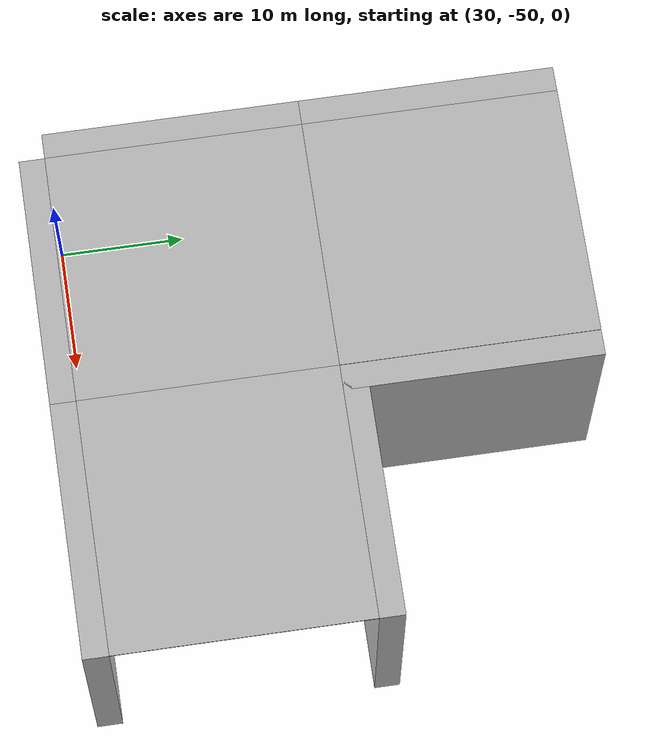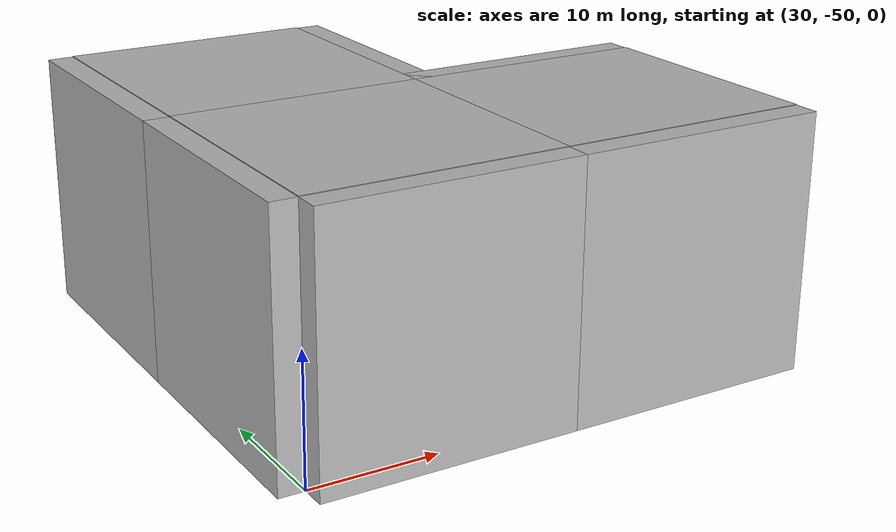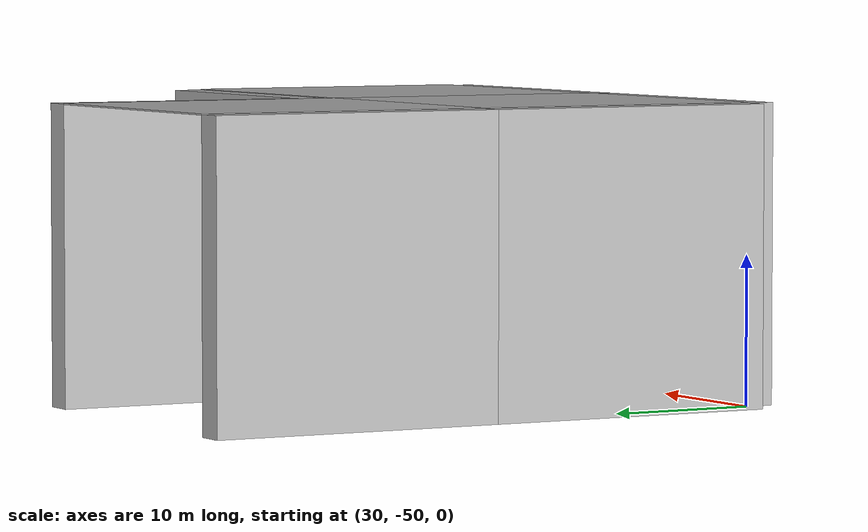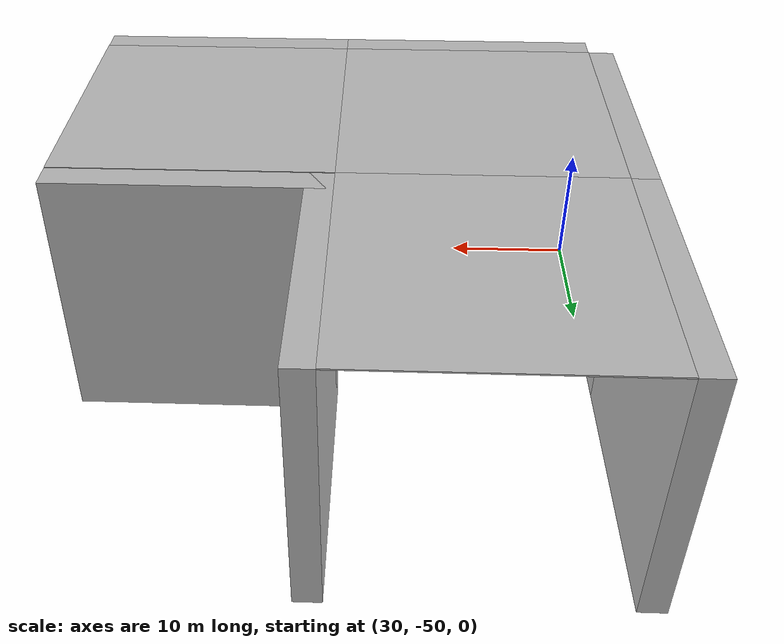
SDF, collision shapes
<?xml version='1.0'?>
<sdf version='1.7'>
  <model name='race_1_02'>
    <link name='link_clone_3_clone_0'>
      <self_collide>0</self_collide>
      <enable_wind>0</enable_wind>
      <kinematic>0</kinematic>
      <pose>51 -20 10 1.5708 -0 1.5708</pose>
      <visual name='visual'>
        <cast_shadows>1</cast_shadows>
        <transparency>0.6</transparency>
        <geometry>
          <box>
            <size>20 20 2</size>
          </box>
        </geometry>
        <material>
          <script>
            <uri>model://new_wall/materials/scripts</uri>
            <uri>model://new_wall/materials/textures/</uri>
            <name>NewWall/Image</name>
          </script>
          <shader type='pixel'/>
        </material>
        <pose>0 0 0 0 -0 0</pose>
      </visual>
      <collision name='collision'>
        <laser_retro>0</laser_retro>
        <max_contacts>10</max_contacts>
        <pose>0 0 0 0 -0 0</pose>
        <geometry>
          <box>
            <size>20 20 2</size>
          </box>
        </geometry>
        <surface>
          <friction>
            <ode>
              <mu>1</mu>
              <mu2>1</mu2>
              <fdir1>0 0 0</fdir1>
              <slip1>0</slip1>
              <slip2>0</slip2>
            </ode>
            <torsional>
              <coefficient>1</coefficient>
              <patch_radius>0</patch_radius>
              <surface_radius>0</surface_radius>
              <use_patch_radius>1</use_patch_radius>
              <ode>
                <slip>0</slip>
              </ode>
            </torsional>
          </friction>
          <bounce>
            <restitution_coefficient>0</restitution_coefficient>
            <threshold>1e+06</threshold>
          </bounce>
          <contact>
            <collide_without_contact>0</collide_without_contact>
            <collide_without_contact_bitmask>1</collide_without_contact_bitmask>
            <collide_bitmask>1</collide_bitmask>
            <ode>
              <soft_cfm>0</soft_cfm>
              <soft_erp>0.2</soft_erp>
              <kp>1e+13</kp>
              <kd>1</kd>
              <max_vel>0.01</max_vel>
              <min_depth>0</min_depth>
            </ode>
            <bullet>
              <split_impulse>1</split_impulse>
              <split_impulse_penetration_threshold>-0.01</split_impulse_penetration_threshold>
              <soft_cfm>0</soft_cfm>
              <soft_erp>0.2</soft_erp>
              <kp>1e+13</kp>
              <kd>1</kd>
            </bullet>
          </contact>
        </surface>
      </collision>
    </link>
    <link name='link_clone_3_clone_1'>
      <self_collide>0</self_collide>
      <enable_wind>0</enable_wind>
      <kinematic>0</kinematic>
      <pose>29 -20 10 1.5708 -0 1.5708</pose>
      <visual name='visual'>
        <cast_shadows>1</cast_shadows>
        <transparency>0.6</transparency>
        <geometry>
          <box>
            <size>20 20 2</size>
          </box>
        </geometry>
        <material>
          <script>
            <uri>model://new_wall/materials/scripts</uri>
            <uri>model://new_wall/materials/textures/</uri>
            <name>NewWall/Image</name>
          </script>
          <shader type='pixel'/>
        </material>
        <pose>0 0 0 0 -0 0</pose>
      </visual>
      <collision name='collision'>
        <laser_retro>0</laser_retro>
        <max_contacts>10</max_contacts>
        <pose>0 0 0 0 -0 0</pose>
        <geometry>
          <box>
            <size>20 20 2</size>
          </box>
        </geometry>
        <surface>
          <friction>
            <ode>
              <mu>1</mu>
              <mu2>1</mu2>
              <fdir1>0 0 0</fdir1>
              <slip1>0</slip1>
              <slip2>0</slip2>
            </ode>
            <torsional>
              <coefficient>1</coefficient>
              <patch_radius>0</patch_radius>
              <surface_radius>0</surface_radius>
              <use_patch_radius>1</use_patch_radius>
              <ode>
                <slip>0</slip>
              </ode>
            </torsional>
          </friction>
          <bounce>
            <restitution_coefficient>0</restitution_coefficient>
            <threshold>1e+06</threshold>
          </bounce>
          <contact>
            <collide_without_contact>0</collide_without_contact>
            <collide_without_contact_bitmask>1</collide_without_contact_bitmask>
            <collide_bitmask>1</collide_bitmask>
            <ode>
              <soft_cfm>0</soft_cfm>
              <soft_erp>0.2</soft_erp>
              <kp>1e+13</kp>
              <kd>1</kd>
              <max_vel>0.01</max_vel>
              <min_depth>0</min_depth>
            </ode>
            <bullet>
              <split_impulse>1</split_impulse>
              <split_impulse_penetration_threshold>-0.01</split_impulse_penetration_threshold>
              <soft_cfm>0</soft_cfm>
              <soft_erp>0.2</soft_erp>
              <kp>1e+13</kp>
              <kd>1</kd>
            </bullet>
          </contact>
        </surface>
      </collision>
    </link>
    <link name='link_clone_3_clone_2'>
      <self_collide>0</self_collide>
      <enable_wind>0</enable_wind>
      <kinematic>0</kinematic>
      <pose>29 -40 10 1.5708 -0 1.5708</pose>
      <visual name='visual'>
        <cast_shadows>1</cast_shadows>
        <transparency>0.6</transparency>
        <geometry>
          <box>
            <size>20 20 2</size>
          </box>
        </geometry>
        <material>
          <script>
            <uri>model://new_wall/materials/scripts</uri>
            <uri>model://new_wall/materials/textures/</uri>
            <name>NewWall/Image</name>
          </script>
          <shader type='pixel'/>
        </material>
        <pose>0 0 0 0 -0 0</pose>
      </visual>
      <collision name='collision'>
        <laser_retro>0</laser_retro>
        <max_contacts>10</max_contacts>
        <pose>0 0 0 0 -0 0</pose>
        <geometry>
          <box>
            <size>20 20 2</size>
          </box>
        </geometry>
        <surface>
          <friction>
            <ode>
              <mu>1</mu>
              <mu2>1</mu2>
              <fdir1>0 0 0</fdir1>
              <slip1>0</slip1>
              <slip2>0</slip2>
            </ode>
            <torsional>
              <coefficient>1</coefficient>
              <patch_radius>0</patch_radius>
              <surface_radius>0</surface_radius>
              <use_patch_radius>1</use_patch_radius>
              <ode>
                <slip>0</slip>
              </ode>
            </torsional>
          </friction>
          <bounce>
            <restitution_coefficient>0</restitution_coefficient>
            <threshold>1e+06</threshold>
          </bounce>
          <contact>
            <collide_without_contact>0</collide_without_contact>
            <collide_without_contact_bitmask>1</collide_without_contact_bitmask>
            <collide_bitmask>1</collide_bitmask>
            <ode>
              <soft_cfm>0</soft_cfm>
              <soft_erp>0.2</soft_erp>
              <kp>1e+13</kp>
              <kd>1</kd>
              <max_vel>0.01</max_vel>
              <min_depth>0</min_depth>
            </ode>
            <bullet>
              <split_impulse>1</split_impulse>
              <split_impulse_penetration_threshold>-0.01</split_impulse_penetration_threshold>
              <soft_cfm>0</soft_cfm>
              <soft_erp>0.2</soft_erp>
              <kp>1e+13</kp>
              <kd>1</kd>
            </bullet>
          </contact>
        </surface>
      </collision>
    </link>
    <link name='link_clone_4'>
      <self_collide>0</self_collide>
      <enable_wind>0</enable_wind>
      <kinematic>0</kinematic>
      <pose>40 -51 10 1.5708 -0 0</pose>
      <visual name='visual'>
        <cast_shadows>1</cast_shadows>
        <transparency>0.6</transparency>
        <geometry>
          <box>
            <size>20 20 2</size>
          </box>
        </geometry>
        <material>
          <script>
            <uri>model://new_wall/materials/scripts</uri>
            <uri>model://new_wall/materials/textures/</uri>
            <name>NewWall/Image</name>
          </script>
          <shader type='pixel'/>
        </material>
        <pose>0 0 0 0 -0 0</pose>
      </visual>
      <collision name='collision'>
        <laser_retro>0</laser_retro>
        <max_contacts>10</max_contacts>
        <pose>0 0 0 0 -0 0</pose>
        <geometry>
          <box>
            <size>20 20 2</size>
          </box>
        </geometry>
        <surface>
          <friction>
            <ode>
              <mu>1</mu>
              <mu2>1</mu2>
              <fdir1>0 0 0</fdir1>
              <slip1>0</slip1>
              <slip2>0</slip2>
            </ode>
            <torsional>
              <coefficient>1</coefficient>
              <patch_radius>0</patch_radius>
              <surface_radius>0</surface_radius>
              <use_patch_radius>1</use_patch_radius>
              <ode>
                <slip>0</slip>
              </ode>
            </torsional>
          </friction>
          <bounce>
            <restitution_coefficient>0</restitution_coefficient>
            <threshold>1e+06</threshold>
          </bounce>
          <contact>
            <collide_without_contact>0</collide_without_contact>
            <collide_without_contact_bitmask>1</collide_without_contact_bitmask>
            <collide_bitmask>1</collide_bitmask>
            <ode>
              <soft_cfm>0</soft_cfm>
              <soft_erp>0.2</soft_erp>
              <kp>1e+13</kp>
              <kd>1</kd>
              <max_vel>0.01</max_vel>
              <min_depth>0</min_depth>
            </ode>
            <bullet>
              <split_impulse>1</split_impulse>
              <split_impulse_penetration_threshold>-0.01</split_impulse_penetration_threshold>
              <soft_cfm>0</soft_cfm>
              <soft_erp>0.2</soft_erp>
              <kp>1e+13</kp>
              <kd>1</kd>
            </bullet>
          </contact>
        </surface>
      </collision>
    </link>
    <link name='link_clone_5'>
      <self_collide>0</self_collide>
      <enable_wind>0</enable_wind>
      <kinematic>0</kinematic>
      <pose>60 -29 10 1.5708 -0 0</pose>
      <visual name='visual'>
        <cast_shadows>1</cast_shadows>
        <transparency>0.6</transparency>
        <geometry>
          <box>
            <size>20 20 2</size>
          </box>
        </geometry>
        <material>
          <script>
            <uri>model://new_wall/materials/scripts</uri>
            <uri>model://new_wall/materials/textures/</uri>
            <name>NewWall/Image</name>
          </script>
          <shader type='pixel'/>
        </material>
        <pose>0 0 0 0 -0 0</pose>
      </visual>
      <collision name='collision'>
        <laser_retro>0</laser_retro>
        <max_contacts>10</max_contacts>
        <pose>0 0 0 0 -0 0</pose>
        <geometry>
          <box>
            <size>20 20 2</size>
          </box>
        </geometry>
        <surface>
          <friction>
            <ode>
              <mu>1</mu>
              <mu2>1</mu2>
              <fdir1>0 0 0</fdir1>
              <slip1>0</slip1>
              <slip2>0</slip2>
            </ode>
            <torsional>
              <coefficient>1</coefficient>
              <patch_radius>0</patch_radius>
              <surface_radius>0</surface_radius>
              <use_patch_radius>1</use_patch_radius>
              <ode>
                <slip>0</slip>
              </ode>
            </torsional>
          </friction>
          <bounce>
            <restitution_coefficient>0</restitution_coefficient>
            <threshold>1e+06</threshold>
          </bounce>
          <contact>
            <collide_without_contact>0</collide_without_contact>
            <collide_without_contact_bitmask>1</collide_without_contact_bitmask>
            <collide_bitmask>1</collide_bitmask>
            <ode>
              <soft_cfm>0</soft_cfm>
              <soft_erp>0.2</soft_erp>
              <kp>1e+13</kp>
              <kd>1</kd>
              <max_vel>0.01</max_vel>
              <min_depth>0</min_depth>
            </ode>
            <bullet>
              <split_impulse>1</split_impulse>
              <split_impulse_penetration_threshold>-0.01</split_impulse_penetration_threshold>
              <soft_cfm>0</soft_cfm>
              <soft_erp>0.2</soft_erp>
              <kp>1e+13</kp>
              <kd>1</kd>
            </bullet>
          </contact>
        </surface>
      </collision>
    </link>
    <link name='link_clone_6'>
      <self_collide>0</self_collide>
      <enable_wind>0</enable_wind>
      <kinematic>0</kinematic>
      <pose>60 -51 10 1.5708 -0 0</pose>
      <visual name='visual'>
        <cast_shadows>1</cast_shadows>
        <transparency>0.6</transparency>
        <geometry>
          <box>
            <size>20 20 2</size>
          </box>
        </geometry>
        <material>
          <script>
            <uri>model://new_wall/materials/scripts</uri>
            <uri>model://new_wall/materials/textures/</uri>
            <name>NewWall/Image</name>
          </script>
          <shader type='pixel'/>
        </material>
        <pose>0 0 0 0 -0 0</pose>
      </visual>
      <collision name='collision'>
        <laser_retro>0</laser_retro>
        <max_contacts>10</max_contacts>
        <pose>0 0 0 0 -0 0</pose>
        <geometry>
          <box>
            <size>20 20 2</size>
          </box>
        </geometry>
        <surface>
          <friction>
            <ode>
              <mu>1</mu>
              <mu2>1</mu2>
              <fdir1>0 0 0</fdir1>
              <slip1>0</slip1>
              <slip2>0</slip2>
            </ode>
            <torsional>
              <coefficient>1</coefficient>
              <patch_radius>0</patch_radius>
              <surface_radius>0</surface_radius>
              <use_patch_radius>1</use_patch_radius>
              <ode>
                <slip>0</slip>
              </ode>
            </torsional>
          </friction>
          <bounce>
            <restitution_coefficient>0</restitution_coefficient>
            <threshold>1e+06</threshold>
          </bounce>
          <contact>
            <collide_without_contact>0</collide_without_contact>
            <collide_without_contact_bitmask>1</collide_without_contact_bitmask>
            <collide_bitmask>1</collide_bitmask>
            <ode>
              <soft_cfm>0</soft_cfm>
              <soft_erp>0.2</soft_erp>
              <kp>1e+13</kp>
              <kd>1</kd>
              <max_vel>0.01</max_vel>
              <min_depth>0</min_depth>
            </ode>
            <bullet>
              <split_impulse>1</split_impulse>
              <split_impulse_penetration_threshold>-0.01</split_impulse_penetration_threshold>
              <soft_cfm>0</soft_cfm>
              <soft_erp>0.2</soft_erp>
              <kp>1e+13</kp>
              <kd>1</kd>
            </bullet>
          </contact>
        </surface>
      </collision>
    </link>
    <model name='oneSidedPlane_2_clone_1'>
      <static>1</static>
      <link name='link'>
        <collision name='collision'>
          <geometry>
            <box>
              <size>20 20 0.1</size>
            </box>
          </geometry>
          <max_contacts>10</max_contacts>
          <surface>
            <contact>
              <ode/>
            </contact>
            <bounce/>
            <friction>
              <torsional>
                <ode/>
              </torsional>
              <ode/>
            </friction>
          </surface>
        </collision>
        <visual name='visual'>
          <cast_shadows>0</cast_shadows>
          <geometry>
            <mesh>
              <scale>1 1 1</scale>
              <uri>model://oneSidedPlane_2/wall1.obj</uri>
            </mesh>
          </geometry>
        </visual>
        <self_collide>0</self_collide>
        <enable_wind>0</enable_wind>
        <kinematic>0</kinematic>
      </link>
      <pose>40 -20 20 0 -0 0</pose>
    </model>
    <model name='oneSidedPlane_2_clone_2'>
      <static>1</static>
      <link name='link'>
        <collision name='collision'>
          <geometry>
            <box>
              <size>20 20 0.1</size>
            </box>
          </geometry>
          <max_contacts>10</max_contacts>
          <surface>
            <contact>
              <ode/>
            </contact>
            <bounce/>
            <friction>
              <torsional>
                <ode/>
              </torsional>
              <ode/>
            </friction>
          </surface>
        </collision>
        <visual name='visual'>
          <cast_shadows>0</cast_shadows>
          <geometry>
            <mesh>
              <scale>1 1 1</scale>
              <uri>model://oneSidedPlane_2/wall1.obj</uri>
            </mesh>
          </geometry>
        </visual>
        <self_collide>0</self_collide>
        <enable_wind>0</enable_wind>
        <kinematic>0</kinematic>
      </link>
      <pose>40 -40 20 0 -0 0</pose>
    </model>
    <model name='oneSidedPlane_2_clone_3'>
      <static>1</static>
      <link name='link'>
        <collision name='collision'>
          <geometry>
            <box>
              <size>20 20 0.1</size>
            </box>
          </geometry>
          <max_contacts>10</max_contacts>
          <surface>
            <contact>
              <ode/>
            </contact>
            <bounce/>
            <friction>
              <torsional>
                <ode/>
              </torsional>
              <ode/>
            </friction>
          </surface>
        </collision>
        <visual name='visual'>
          <cast_shadows>0</cast_shadows>
          <geometry>
            <mesh>
              <scale>1 1 1</scale>
              <uri>model://oneSidedPlane_2/wall1.obj</uri>
            </mesh>
          </geometry>
        </visual>
        <self_collide>0</self_collide>
        <enable_wind>0</enable_wind>
        <kinematic>0</kinematic>
      </link>
      <pose>60 -40 20 0 -0 0</pose>
    </model>
    <static>1</static>
    <allow_auto_disable>1</allow_auto_disable>
  </model>
</sdf>
